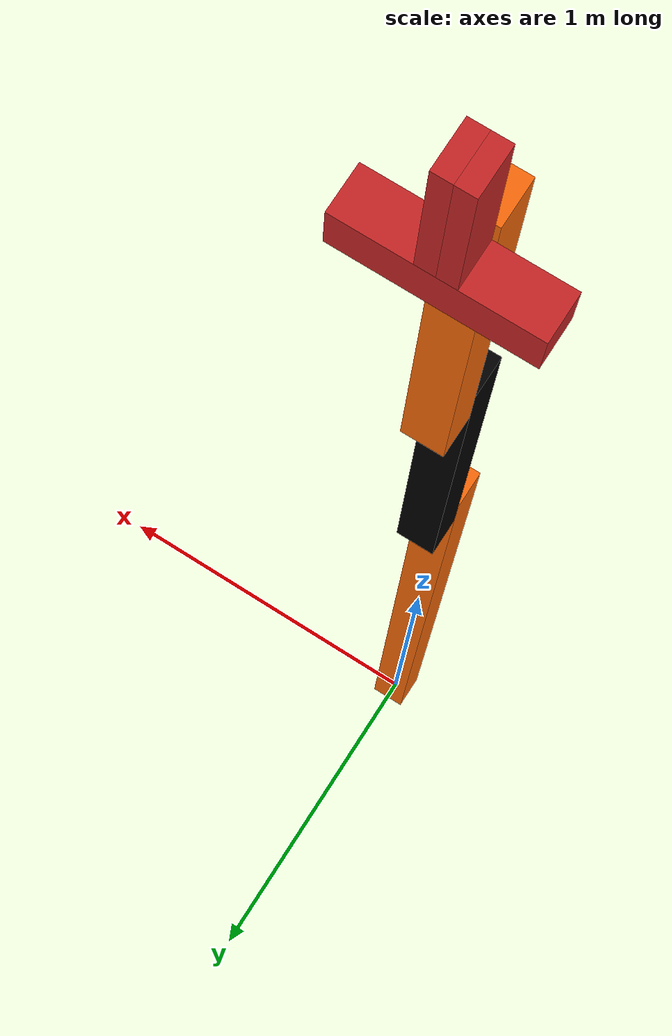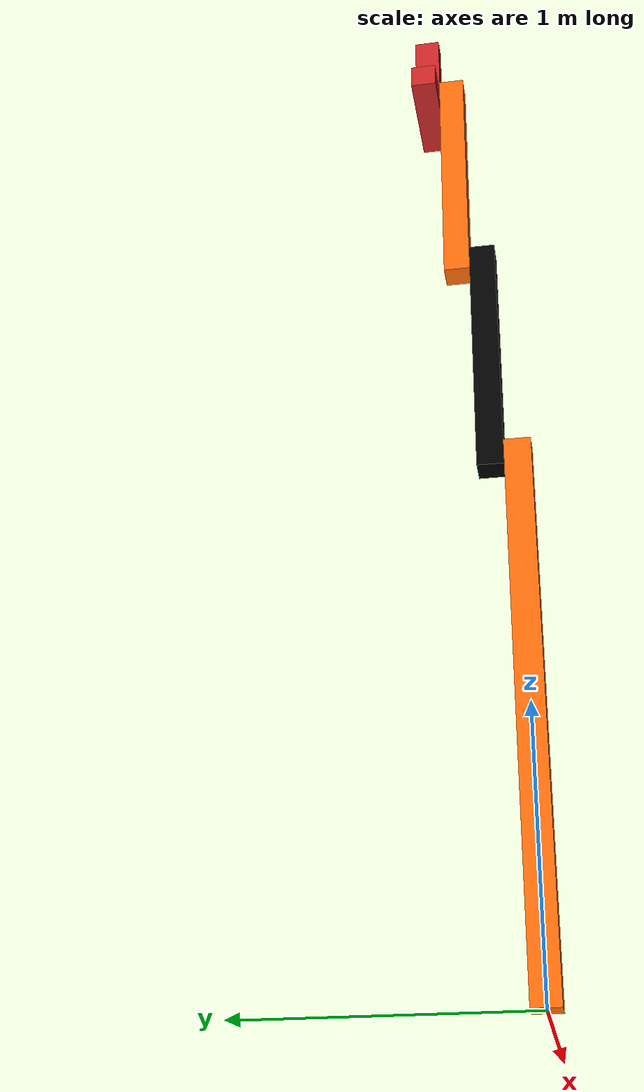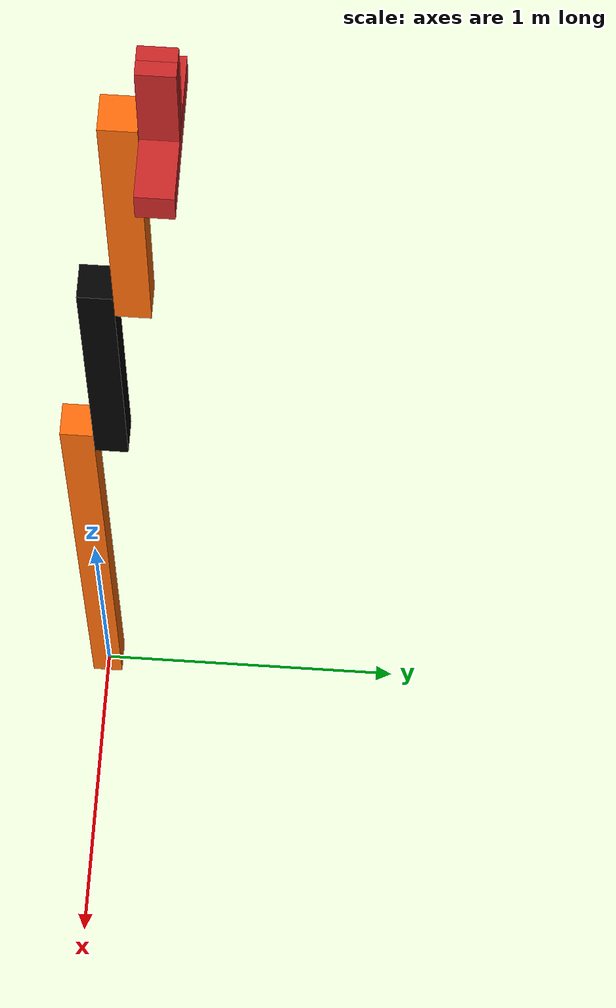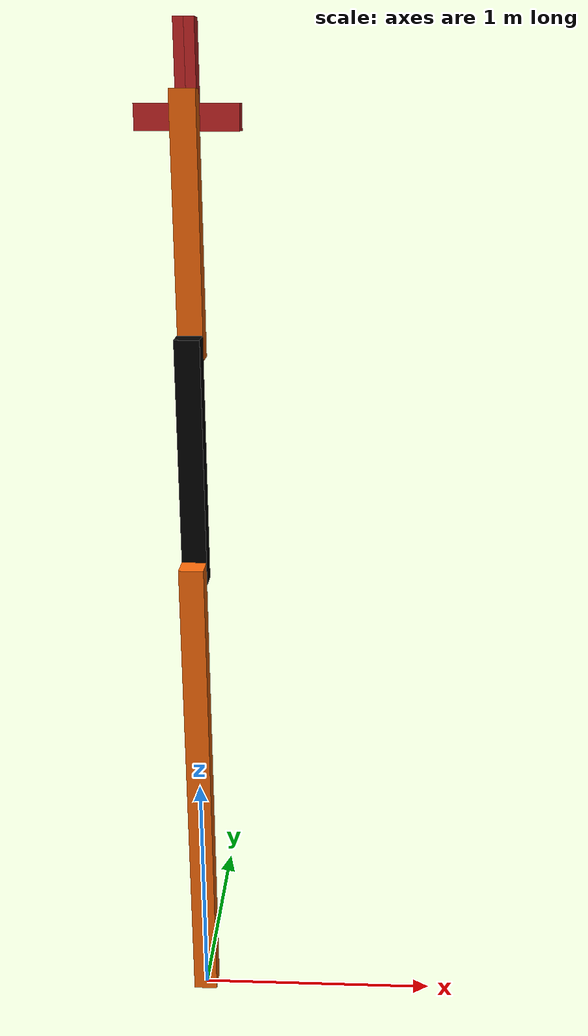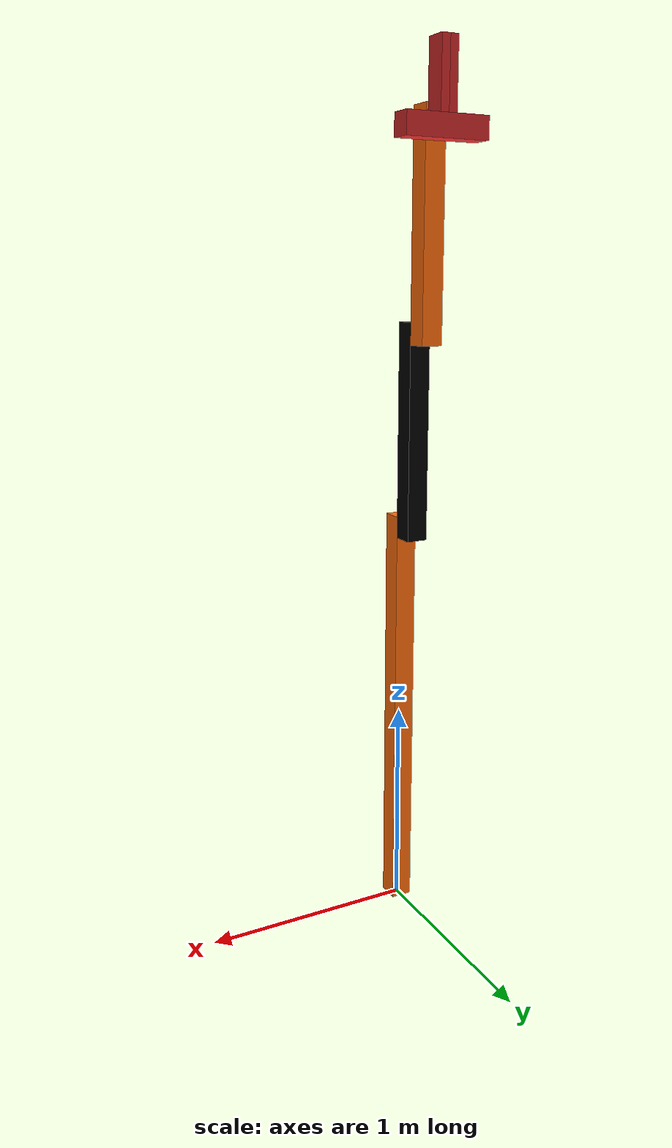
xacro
<?xml version="1.0" ?>
<robot name="hal_rrbot" xmlns:xacro="http://www.ros.org/wiki/xacro">

  <!-- rrobot -->
  <xacro:include
      filename="$(find rrbot_description)/urdf/rrbot.xacro"/>

  <!-- Add gripper macro attached at rrbot link3 -->
  <xacro:include
      filename="$(find hal_rrbot_control)/urdf/hal_rrbot_gripper.xacro"/>
  <xacro:hal_rrbot_gripper
      prefix=""
      parent_link="link3"
      offset="${height3}"
      />

</robot>

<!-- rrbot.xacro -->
<!-- Revolute-Revolute Manipulator -->
<robot name="rrbot" xmlns:xacro="http://www.ros.org/wiki/xacro">

  <!-- Constants for robot dimensions -->
  <xacro:property name="PI" value="3.1415926535897931"/>
  <xacro:property name="width" value="0.1" />
  <!-- Square dimensions (widthxwidth) of beams -->
  <xacro:property name="height1" value="2" />
  <!-- Link 1 -->
  <xacro:property name="height2" value="1" />
  <!-- Link 2 -->
  <xacro:property name="height3" value="1" />
  <!-- Link 3 -->
  <xacro:property name="camera_link" value="0.05" />
  <!-- Size of square 'camera' box -->
  <xacro:property name="axel_offset" value="0.05" />
  <!-- Space btw top of beam and the each joint -->

  <material name="black">
    <color rgba="0.0 0.0 0.0 1.0"/>
  </material>

  <material name="orange">
    <color rgba="${255/255} ${108/255} ${10/255} 1.0"/>
  </material>

  <!-- Used for fixing robot to Gazebo 'base_link' -->
  <link name="world"/>

  <joint name="fixed" type="fixed">
    <parent link="world"/>
    <child link="link1"/>
  </joint>

  <!-- Base Link -->
  <link name="link1">
    <collision>
      <origin xyz="0 0 ${height1/2}" rpy="0 0 0"/>
      <geometry>
        <box size="${width} ${width} ${height1}"/>
      </geometry>
    </collision>

    <visual>
      <origin xyz="0 0 ${height1/2}" rpy="0 0 0"/>
      <geometry>
        <box size="${width} ${width} ${height1}"/>
      </geometry>
      <material name="orange"/>
    </visual>

    <inertial>
      <origin xyz="0 0 ${height1/2}" rpy="0 0 0"/>
      <mass value="1"/>
      <inertia
    ixx="1.0" ixy="0.0" ixz="0.0"
    iyy="1.0" iyz="0.0"
    izz="1.0"/>
    </inertial>
  </link>

  <joint name="joint1" type="continuous">
    <parent link="link1"/>
    <child link="link2"/>
    <origin xyz="0 ${width} ${height1 - axel_offset}" rpy="0 0 0"/>
    <axis xyz="0 1 0"/>
    <dynamics damping="0.7"/>
    <limit effort="20" velocity="${2*PI}" />
  </joint>

  <!-- Middle Link -->
  <link name="link2">
    <collision>
      <origin xyz="0 0 ${height2/2 - axel_offset}" rpy="0 0 0"/>
      <geometry>
        <box size="${width} ${width} ${height2}"/>
      </geometry>
    </collision>

    <visual>
      <origin xyz="0 0 ${height2/2 - axel_offset}" rpy="0 0 0"/>
      <geometry>
        <box size="${width} ${width} ${height2}"/>
      </geometry>
      <material name="black"/>
    </visual>

    <inertial>
      <origin xyz="0 0 ${height2/2 - axel_offset}" rpy="0 0 0"/>
      <mass value="1"/>
      <inertia
    ixx="1.0" ixy="0.0" ixz="0.0"
    iyy="1.0" iyz="0.0"
    izz="1.0"/>
    </inertial>
  </link>

  <joint name="joint2" type="continuous">
    <parent link="link2"/>
    <child link="link3"/>
    <origin xyz="0 ${width} ${height2 - axel_offset*2}" rpy="0 0 0"/>
    <axis xyz="0 1 0"/>
    <dynamics damping="0.7"/>
    <limit effort="20" velocity="${2*PI}" />
  </joint>

  <!-- Top Link -->
  <link name="link3">
    <collision>
      <origin xyz="0 0 ${height3/2 - axel_offset}" rpy="0 0 0"/>
      <geometry>
        <box size="${width} ${width} ${height3}"/>
      </geometry>
    </collision>

    <visual>
      <origin xyz="0 0 ${height3/2 - axel_offset}" rpy="0 0 0"/>
      <geometry>
        <box size="${width} ${width} ${height3}"/>
      </geometry>
      <material name="orange"/>
    </visual>

    <inertial>
      <origin xyz="0 0 ${height3/2 - axel_offset}" rpy="0 0 0"/>
      <mass value="1"/>
      <inertia
    ixx="1.0" ixy="0.0" ixz="0.0"
    iyy="1.0" iyz="0.0"
    izz="1.0"/>
    </inertial>
  </link>

</robot>

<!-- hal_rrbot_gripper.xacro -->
<robot xmlns:xacro="http://www.ros.org/wiki/xacro">
  <xacro:macro name="hal_rrbot_gripper" params="prefix parent_link offset">

    <!-- Depth of base and finger links -->
    <xacro:property name="d" value="0.1" />

    <!-- Width and height of base link -->
    <xacro:property name="base_w" value="0.4" />
    <xacro:property name="base_h" value="0.1" />

    <!-- Width, height, travel of finger links -->
    <xacro:property name="finger_w" value="0.04" />
    <xacro:property name="finger_h" value="0.3" />
    <xacro:property name="travel" value="${base_w/2 - finger_w}" />

    <!-- arbitrary value for mass -->
    <xacro:property name="base_mass" value="${base_w*base_h*d}" />
    <xacro:property name="finger_mass" value="${finger_w*finger_h*d}" />

    <!-- Base joint on robot flange -->
    <!-- - Centered on gripper_base bottom -->
    <joint name="${prefix}gripper_base_joint" type="fixed">
      <parent link="${parent_link}"/>
      <child link="${prefix}gripper_base"/>
      <origin xyz="0 ${d} ${offset-2*base_h}" rpy="0 0 0"/>
    </joint>

    <!-- Finger joints -->
    <!-- - joint1:  left side of base, travels right -->
    <joint name="${prefix}gripper_finger" type="prismatic">
      <parent link="${prefix}gripper_base"/>
      <child link="${prefix}gripper_finger_link1"/>
      <origin xyz="${-finger_w/2} 0 ${base_h}" rpy="0 0 0"/>
      <axis xyz="1 0 0"/>
      <limit effort="99" velocity="99" lower="0" upper="${travel}"/>
    </joint>
    <!-- - joint2:  right side of base, travels left symmetrically w/joint1 -->
    <joint name="${prefix}gripper_finger2" type="prismatic">
      <parent link="${prefix}gripper_base"/>
      <child link="${prefix}gripper_finger_link2"/>
      <origin xyz="${finger_w/2} 0 ${base_h}" rpy="0 0 0"/>
      <axis xyz="-1 0 0"/>
      <limit effort="99" velocity="99" lower="${-travel}" upper="0"/>
      <mimic joint="${prefix}gripper_finger" multiplier="1"/>
    </joint>

    <!-- Base link -->
    <link name="${prefix}gripper_base">
      <collision>
	<origin xyz="0 0 ${base_h/2}" rpy="0 0 0"/>
	<geometry>
	  <box size="${base_w} ${d} ${base_h}"/>
	</geometry>
      </collision>

      <visual>
	<origin xyz="0 0 ${base_h/2}" rpy="0 0 0"/>
	<geometry>
	  <box size="${base_w} ${d} ${base_h}"/>
	</geometry>
        <material name="red"/>
      </visual>

      <inertial>
	<origin xyz="0 0 ${base_h/2}" rpy="0 0 0"/>
	<mass value="${base_mass}"/>
	<inertia
	    ixx="${base_mass/12.0 * (d**2 + base_h**2)}" ixy="0.0" ixz="0.0"
	    iyy="${base_mass/12.0 * (base_w**2 + base_h**2)}" iyz="0.0"
	    izz="${base_mass/12.0 * (base_w**2 + d**2)}"/>
      </inertial>
    </link>

    <link name="${prefix}gripper_finger_link1">
      <collision>
	<origin xyz="0 0 ${finger_h/2}" rpy="0 0 0"/>
	<geometry>
	  <box size="${finger_w} ${d} ${finger_h}"/>
	</geometry>
      </collision>

      <visual>
	<origin xyz="0 0 ${finger_h/2}" rpy="0 0 0"/>
	<geometry>
	  <box size="${finger_w} ${d} ${finger_h}"/>
	</geometry>
        <material name="red"/>
      </visual>

      <inertial>
	<origin xyz="0 0 ${finger_h/2}" rpy="0 0 0"/>
	<mass value="${finger_mass}"/>
	<inertia
	    ixx="${finger_mass/12.0 * (d**2 + finger_h**2)}" ixy="0.0" ixz="0.0"
	    iyy="${finger_mass/12.0 * (finger_w**2 + finger_h**2)}" iyz="0.0"
	    izz="${finger_mass/12.0 * (finger_w**2 + d**2)}"/>
      </inertial>
    </link>

    <link name="${prefix}gripper_finger_link2">
      <collision>
	<origin xyz="0 0 ${finger_h/2}" rpy="0 0 0"/>
	<geometry>
	  <box size="${finger_w} ${d} ${finger_h}"/>
	</geometry>
      </collision>

      <visual>
	<origin xyz="0 0 ${finger_h/2}" rpy="0 0 0"/>
	<geometry>
	  <box size="${finger_w} ${d} ${finger_h}"/>
	</geometry>
        <material name="red"/>
      </visual>

      <inertial>
	<origin xyz="0 0 0" rpy="0 0 0"/>
	<mass value="${finger_mass}"/>
	<inertia
	    ixx="${finger_mass/12.0 * (d**2 + finger_h**2)}" ixy="0.0" ixz="0.0"
	    iyy="${finger_mass/12.0 * (finger_w**2 + finger_h**2)}" iyz="0.0"
	    izz="${finger_mass/12.0 * (finger_w**2 + d**2)}"/>
      </inertial>
    </link>

  </xacro:macro>
</robot>
